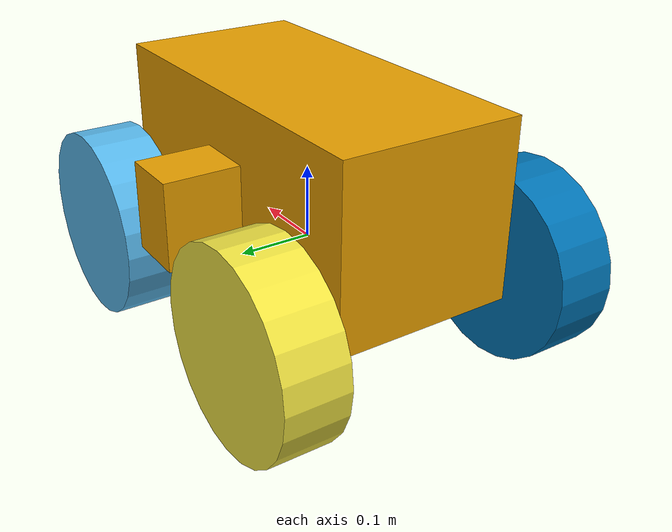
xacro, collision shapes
<?xml version="1.0" encoding="utf-8"?>
<robot name='robotika_freyja_sensor_config_1' xmlns:xacro='http://ros.org/wiki/xacro'>
  <xacro:arg name="name" default="robotika_freyja_sensor_config_1"/>
  <xacro:property name="robot_namespace" value="$(arg name)"/>

  <link name='${robot_namespace}/base_link'>
    <inertial>
      <origin xyz='0 0 0.0725' rpy='0 -0 0'/>
      <mass value='9.6'/>
      <inertia ixx='0.0512' ixy='0' ixz='0' iyy='0.07712' iyz='0' izz='0.11808'/>
    </inertial>
    <collision name='chassis_collision'>
      <origin xyz='0 0 0.105' rpy='0 -0 0'/>
      <geometry>
        <box size='0.5 0.24 0.235'/>
      </geometry>
    </collision>
    <collision name='left_mount_collision'>
      <origin xyz='0 0.17 0.085' rpy='0 -0 0'/>
      <geometry>
        <box size='0.08 0.1 0.115'/>
      </geometry>
    </collision>
    <collision name='right_mount_collision'>
      <origin xyz='0 -0.17 0.085' rpy='0 -0 0'/>
      <geometry>
        <box size='0.08 0.1 0.115'/>
      </geometry>
    </collision>
    <visual name='chassis_main_visual'>
      <origin xyz='0 0 0.0725' rpy='0 -0 0'/>
      <geometry>
        <box size='0.46 0.24 0.12'/>
      </geometry>
    </visual>
    <visual name='chassis_front_face_bottom'>
      <origin xyz='0.24 0 0.0175' rpy='0 -0 0'/>
      <geometry>
        <box size='0.02001 0.24 0.01'/>
      </geometry>
    </visual>
    <visual name='chassis_front_face_top'>
      <origin xyz='0.24 0 0.1275' rpy='0 -0 0'/>
      <geometry>
        <box size='0.02001 0.24 0.01'/>
      </geometry>
    </visual>
    <visual name='chassis_front_face_top_marker'>
      <origin xyz='0.245 0 0.1325' rpy='0 -0 0'/>
      <geometry>
        <box size='0.01 0.12 0.0001'/>
      </geometry>
    </visual>
    <visual name='chassis_front_face_left'>
      <origin xyz='0.24 0.115 0.0725' rpy='0 -0 0'/>
      <geometry>
        <box size='0.02001 0.01 0.12'/>
      </geometry>
    </visual>
    <visual name='chassis_front_face_right'>
      <origin xyz='0.24 -0.115 0.0725' rpy='0 -0 0'/>
      <geometry>
        <box size='0.02001 0.01 0.12'/>
      </geometry>
    </visual>
    <visual name='chassis_rear_face_bottom'>
      <origin xyz='-0.24 0 0.0175' rpy='0 -0 0'/>
      <geometry>
        <box size='0.02001 0.24 0.01'/>
      </geometry>
    </visual>
    <visual name='chassis_rear_face_top'>
      <origin xyz='-0.24 0 0.1275' rpy='0 -0 0'/>
      <geometry>
        <box size='0.02001 0.24 0.01'/>
      </geometry>
    </visual>
    <visual name='chassis_rear_face_top_marker'>
      <origin xyz='-0.245 0 0.1325' rpy='0 -0 0'/>
      <geometry>
        <box size='0.01 0.12 0.0001'/>
      </geometry>
    </visual>
    <visual name='chassis_rear_face_left'>
      <origin xyz='-0.24 0.115 0.0725' rpy='0 -0 0'/>
      <geometry>
        <box size='0.02001 0.01 0.12'/>
      </geometry>
    </visual>
    <visual name='chassis_rear_face_right'>
      <origin xyz='-0.24 -0.115 0.0725' rpy='0 -0 0'/>
      <geometry>
        <box size='0.02001 0.01 0.12'/>
      </geometry>
    </visual>
    <visual name='lidar_base_visual'>
      <origin xyz='0 0 0.135' rpy='0 -0 0'/>
      <geometry>
        <box size='0.3001 0.21 0.005'/>
      </geometry>
    </visual>
    <visual name='cable_cover_left_visual'>
      <origin xyz='0 0.095 0.1475' rpy='0 -0 0'/>
      <geometry>
        <box size='0.07 0.02 0.02001'/>
      </geometry>
    </visual>
    <visual name='cable_cover_right_visual'>
      <origin xyz='0 -0.095 0.1475' rpy='0 -0 0'/>
      <geometry>
        <box size='0.07 0.02 0.02001'/>
      </geometry>
    </visual>
    <visual name='cable_cover_top_visual'>
      <origin xyz='0 0 0.16' rpy='0 -0 0'/>
      <geometry>
        <box size='0.07 0.21 0.005'/>
      </geometry>
    </visual>
    <visual name='left_mount_visual'>
      <origin xyz='0 0.17 0.0725' rpy='0 -0 0'/>
      <geometry>
        <box size='0.08 0.1 0.09'/>
      </geometry>
    </visual>
    <visual name='left_mount_top_marker_visual'>
      <origin xyz='0 0.215 0.1175' rpy='0 -0 0'/>
      <geometry>
        <box size='0.08 0.01 0.0001'/>
      </geometry>
    </visual>
    <visual name='right_mount_visual'>
      <origin xyz='0 -0.17 0.0725' rpy='0 -0 0'/>
      <geometry>
        <box size='0.08 0.1 0.09'/>
      </geometry>
    </visual>
    <visual name='right_mount_top_marker_visual'>
      <origin xyz='0 -0.215 0.1175' rpy='0 -0 0'/>
      <geometry>
        <box size='0.08 0.01 0.0001'/>
      </geometry>
    </visual>
    <visual name='emergency_stop_bottom_visual'>
      <origin xyz='0 -0.155 0.125' rpy='0 -0 0'/>
      <geometry>
        <cylinder radius='0.015' length='0.015'/>
      </geometry>
    </visual>
    <visual name='emergency_stop_top_visual'>
      <origin xyz='0 -0.155 0.135' rpy='0 -0 0'/>
      <geometry>
        <cylinder radius='0.02' length='0.005'/>
      </geometry>
    </visual>
    <visual name='power_switch_bottom_visual'>
      <origin xyz='0 0.155 0.1225' rpy='0 -0 0'/>
      <geometry>
        <cylinder radius='0.015' length='0.005'/>
      </geometry>
    </visual>
    <visual name='power_switch_middle_visual'>
      <origin xyz='0 0.155 0.1275' rpy='0 -0 0'/>
      <geometry>
        <cylinder radius='0.015' length='0.005'/>
      </geometry>
    </visual>
    <visual name='power_switch_top_visual'>
      <origin xyz='0 0.155 0.1375' rpy='0 -0 0.35'/>
      <geometry>
        <box size='0.025 0.005 0.01'/>
      </geometry>
    </visual>
    <visual name='wheel_mount_front_left_axis_visual'>
      <origin xyz='0.19 0.11 0' rpy='1.5708 -0 0'/>
      <geometry>
        <cylinder radius='0.008' length='0.05'/>
      </geometry>
    </visual>
    <visual name='wheel_mount_front_left_visual'>
      <origin xyz='0.19 0.08 0' rpy='0 -0 0'/>
      <geometry>
        <box size='0.05 0.07 0.025'/>
      </geometry>
    </visual>
    <visual name='wheel_mount_front_right_axis_visual'>
      <origin xyz='0.19 -0.11 0' rpy='1.5708 -0 0'/>
      <geometry>
        <cylinder radius='0.008' length='0.05'/>
      </geometry>
    </visual>
    <visual name='wheel_mount_front_right_visual'>
      <origin xyz='0.19 -0.08 0' rpy='0 -0 0'/>
      <geometry>
        <box size='0.05 0.07 0.025'/>
      </geometry>
    </visual>
    <visual name='wheel_mount_rear_left_axis_visual'>
      <origin xyz='-0.19 0.11 0' rpy='1.5708 -0 0'/>
      <geometry>
        <cylinder radius='0.008' length='0.05'/>
      </geometry>
    </visual>
    <visual name='wheel_mount_rear_left_visual'>
      <origin xyz='-0.19 0.08 0' rpy='0 -0 0'/>
      <geometry>
        <box size='0.05 0.07 0.025'/>
      </geometry>
    </visual>
    <visual name='wheel_mount_rear_right_axis_visual'>
      <origin xyz='-0.19 -0.11 0' rpy='1.5708 -0 0'/>
      <geometry>
        <cylinder radius='0.008' length='0.05'/>
      </geometry>
    </visual>
    <visual name='wheel_mount_rear_right_visual'>
      <origin xyz='-0.19 -0.08 0' rpy='0 -0 0'/>
      <geometry>
        <box size='0.05 0.07 0.025'/>
      </geometry>
    </visual>
    <visual name='laser_front_bottom_visual'>
      <origin xyz='0.12 0 0.16' rpy='0 -0 0'/>
      <geometry>
        <box size='0.06 0.065 0.045'/>
      </geometry>
    </visual>
    <visual name='laser_front_top_visual'>
      <origin xyz='0.12 0 0.2025' rpy='0 -0 0'/>
      <geometry>
        <cylinder radius='0.02' length='0.04'/>
      </geometry>
    </visual>
    <visual name='laser_front_cable_green'>
      <origin xyz='0.045 0.01 0.1525' rpy='0 1.5708 0'/>
      <geometry>
        <cylinder radius='0.005' length='0.09'/>
      </geometry>
    </visual>
    <visual name='laser_front_cable_black'>
      <origin xyz='0.045 -0.01 0.1525' rpy='0 1.5708 0'/>
      <geometry>
        <cylinder radius='0.005' length='0.09'/>
      </geometry>
    </visual>
    <visual name='laser_rear_bottom_visual'>
      <origin xyz='-0.12 0 0.1625' rpy='0 -0 0'/>
      <geometry>
        <box size='0.06 0.065 0.045'/>
      </geometry>
    </visual>
    <visual name='laser_rear_top_visual'>
      <origin xyz='-0.12 0 0.2025' rpy='0 -0 0'/>
      <geometry>
        <cylinder radius='0.02' length='0.04'/>
      </geometry>
    </visual>
    <visual name='laser_rear_cable_green'>
      <origin xyz='-0.045 -0.01 0.1525' rpy='0 1.5708 0'/>
      <geometry>
        <cylinder radius='0.005' length='0.09'/>
      </geometry>
    </visual>
    <visual name='laser_rear_cable_black'>
      <origin xyz='-0.045 0.01 0.1525' rpy='0 1.5708 0'/>
      <geometry>
        <cylinder radius='0.005' length='0.09'/>
      </geometry>
    </visual>
    <visual name='rgbd_front_visual'>
      <origin xyz='0.235 0 0.1025' rpy='0 -0 0'/>
      <geometry>
        <box size='0.03 0.162 0.03'/>
      </geometry>
    </visual>
    <visual name='rgbd_rear_visual'>
      <origin xyz='-0.235 0 0.1025' rpy='0 -0 0'/>
      <geometry>
        <box size='0.03 0.162 0.03'/>
      </geometry>
    </visual>
    <visual name='camera_front_visual'>
      <origin xyz='0.2349 0 0.0725' rpy='0 1.5708 0'/>
      <geometry>
        <cylinder radius='0.011' length='0.03'/>
      </geometry>
    </visual>
    <visual name='camera_rear_visual'>
      <origin xyz='-0.2349 0 0.0725' rpy='0 -1.5708 0'/>
      <geometry>
        <cylinder radius='0.011' length='0.03'/>
      </geometry>
    </visual>
    <visual name='camera_left_visual'>
      <origin xyz='0 0.22 0.0725' rpy='-1.5708 0 0'/>
      <geometry>
        <cylinder radius='0.011' length='0.005'/>
      </geometry>
    </visual>
    <visual name='camera_right_visual'>
      <origin xyz='0 -0.22 0.0725' rpy='1.5708 -0 0'/>
      <geometry>
        <cylinder radius='0.011' length='0.005'/>
      </geometry>
    </visual>
    <visual name='light_front_visual'>
      <origin xyz='0.24 0 0.0425' rpy='0 1.5708 0'/>
      <geometry>
        <cylinder radius='0.004' length='0.02001'/>
      </geometry>
    </visual>
    <visual name='light_rear_visual'>
      <origin xyz='-0.24 0 0.0425' rpy='0 1.5708 0'/>
      <geometry>
        <cylinder radius='0.004' length='0.02001'/>
      </geometry>
    </visual>
    <visual name='light_left_visual'>
      <origin xyz='0 0.22 0.0425' rpy='1.5708 -0 0'/>
      <geometry>
        <cylinder radius='0.004' length='0.0005'/>
      </geometry>
    </visual>
    <visual name='light_right_visual'>
      <origin xyz='0 -0.22 0.0425' rpy='1.5708 -0 0'/>
      <geometry>
        <cylinder radius='0.004' length='0.0005'/>
      </geometry>
    </visual>
  </link>

  <sensor name='imu_sensor' update_rate='50'>
    <parent link='${robot_namespace}/base_link'/>
    <origin xyz='0 0 0' rpy='0 -0 0'/>
  </sensor>
  <sensor name='magnetometer' update_rate='50'>
    <parent link='${robot_namespace}/base_link'/>
    <origin xyz='0 0 0' rpy='0 -0 0'/>
  </sensor>
  <sensor name='air_pressure' update_rate='20'>
    <parent link='${robot_namespace}/base_link'/>
    <origin xyz='0 0 0' rpy='0 -0 0'/>
  </sensor>
  <sensor name='laser_front' update_rate='15'>
    <parent link='${robot_namespace}/base_link'/>
    <origin xyz='0.12 0 0.1925' rpy='0 -0 0'/>
  </sensor>
  <sensor name='laser_rear' update_rate='15'>
    <parent link='${robot_namespace}/base_link'/>
    <origin xyz='-0.12 0 0.1925' rpy='0 -0 3.14159'/>
  </sensor>
  <sensor name='rgbd_front' update_rate='30'>
    <parent link='${robot_namespace}/base_link'/>
    <origin xyz='0.250001 0 0.1025' rpy='0 -0 0'/>
    <camera>
      <image width='640' height='360' format='R8G8B8' hfov='1.48358' near='0.01' far='300' />
    </camera>
  </sensor>
  <sensor name='rgbd_rear' update_rate='30'>
    <parent link='${robot_namespace}/base_link'/>
    <origin xyz='-0.250001 0 0.1025' rpy='0 -0 3.14159'/>
    <camera>
      <image width='640' height='360' format='R8G8B8' hfov='1.48358' near='0.01' far='300' />
    </camera>
  </sensor>
  <sensor name='camera_front' update_rate='30'>
    <parent link='${robot_namespace}/base_link'/>
    <origin xyz='0.25 0 0.0725' rpy='0 -0 0'/>
    <camera>
      <image width='640' height='360' format='R8G8B8' hfov='3' near='0.01' far='300' />
    </camera>
  </sensor>
  <sensor name='camera_rear' update_rate='30'>
    <parent link='${robot_namespace}/base_link'/>
    <origin xyz='-0.25 0 0.0725' rpy='0 -0 3.14159'/>
    <camera>
      <image width='640' height='360' format='R8G8B8' hfov='3' near='0.01' far='300' />
    </camera>
  </sensor>
  <sensor name='camera_left' update_rate='30'>
    <parent link='${robot_namespace}/base_link'/>
    <origin xyz='0 0.225 0' rpy='0.0725 -0 0'/>
    <camera>
      <image width='640' height='360' format='R8G8B8' hfov='3' near='0.01' far='300' />
    </camera>
  </sensor>
  <sensor name='camera_right' update_rate='30'>
    <parent link='${robot_namespace}/base_link'/>
    <origin xyz='0 -0.225 0.0725' rpy='0 0 -1.5708'/>
    <camera>
      <image width='640' height='360' format='R8G8B8' hfov='3' near='0.01' far='300' />
    </camera>
  </sensor>
  <link name='${robot_namespace}/front_left_wheel'>
    <inertial>
      <origin xyz='0 0 0' rpy='0 -0 0'/>
      <mass value='5'/>
      <inertia ixx='0.0153' ixy='0' ixz='0' iyy='0.025' iyz='0' izz='0.0153'/>
    </inertial>
    <collision name='front_left_wheel_collision'>
      <origin xyz='0 0 0' rpy='-1.5708 0 0'/>
      <geometry>
        <cylinder radius='0.1275' length='0.082'/>
      </geometry>
    </collision>
    <visual name='front_left_wheel_tire_visual'>
      <origin xyz='0 0 0' rpy='1.5708 -0 0'/>
      <geometry>
        <mesh filename='package://robotika_freyja_sensor_config_1/meshes/wheel_left.dae' scale='1.30102 1.30102 2.05'/>
      </geometry>
    </visual>
    <visual name='front_left_wheel_hub_visual'>
      <origin xyz='0 -0.055 0' rpy='1.5708 -0 0'/>
      <geometry>
        <cylinder radius='0.04' length='0.025'/>
      </geometry>
    </visual>
  </link>
  <link name='${robot_namespace}/front_right_wheel'>
    <inertial>
      <origin xyz='0 0 0' rpy='0 -0 0'/>
      <mass value='5'/>
      <inertia ixx='0.0153' ixy='0' ixz='0' iyy='0.025' iyz='0' izz='0.0153'/>
    </inertial>
    <collision name='front_right_wheel_collision'>
      <origin xyz='0 0 0' rpy='1.5708 -0 0'/>
      <geometry>
        <cylinder radius='0.1275' length='0.082'/>
      </geometry>
    </collision>
    <visual name='front_right_wheel_tire_visual'>
      <origin xyz='0 0 0' rpy='1.5708 -0 0'/>
      <geometry>
        <mesh filename='package://robotika_freyja_sensor_config_1/meshes/wheel_right.dae' scale='1.30102 1.30102 2.05'/>
      </geometry>
    </visual>
    <visual name='front_right_wheel_hub_visual'>
      <origin xyz='0 0.055 0' rpy='1.5708 -0 0'/>
      <geometry>
        <cylinder radius='0.04' length='0.025'/>
      </geometry>
    </visual>
  </link>
  <link name='${robot_namespace}/rear_left_wheel'>
    <inertial>
      <origin xyz='0 0 0' rpy='0 -0 0'/>
      <mass value='5'/>
      <inertia ixx='0.0153' ixy='0' ixz='0' iyy='0.025' iyz='0' izz='0.0153'/>
    </inertial>
    <collision name='rear_left_wheel_collision'>
      <origin xyz='0 0 0' rpy='-1.5708 0 0'/>
      <geometry>
        <cylinder radius='0.1275' length='0.082'/>
      </geometry>
    </collision>
    <visual name='rear_left_wheel_tire_visual'>
      <origin xyz='0 0 0' rpy='1.5708 -0 0'/>
      <geometry>
        <mesh filename='package://robotika_freyja_sensor_config_1/meshes/wheel_left.dae' scale='1.30102 1.30102 2.05'/>
      </geometry>
    </visual>
    <visual name='rear_left_wheel_hub_visual'>
      <origin xyz='0 -0.055 0' rpy='1.5708 -0 0'/>
      <geometry>
        <cylinder radius='0.04' length='0.025'/>
      </geometry>
    </visual>
  </link>
  <link name='${robot_namespace}/rear_right_wheel'>
    <inertial>
      <origin xyz='0 0 0' rpy='0 -0 0'/>
      <mass value='5'/>
      <inertia ixx='0.0153' ixy='0' ixz='0' iyy='0.025' iyz='0' izz='0.0153'/>
    </inertial>
    <collision name='rear_right_wheel_collision'>
      <origin xyz='0 0 0' rpy='1.5708 -0 0'/>
      <geometry>
        <cylinder radius='0.1275' length='0.082'/>
      </geometry>
    </collision>
    <visual name='rear_right_wheel_tire_visual'>
      <origin xyz='0 0 0' rpy='1.5708 -0 0'/>
      <geometry>
        <mesh filename='package://robotika_freyja_sensor_config_1/meshes/wheel_right.dae' scale='1.30102 1.30102 2.05'/>
      </geometry>
    </visual>
    <visual name='rear_right_wheel_hub_visual'>
      <origin xyz='0 0.055 0' rpy='1.5708 -0 0'/>
      <geometry>
        <cylinder radius='0.04' length='0.025'/>
      </geometry>
    </visual>
  </link>
  <joint name='front_left_wheel_joint' type='revolute'>
    <origin xyz='0.19 0.19 0' rpy='0 -0 0'/>
    <parent link='${robot_namespace}/base_link'/>
    <child link='${robot_namespace}/front_left_wheel'/>
    <axis xyz='0 1 0'/>
    <limit lower='-1.79769e+308' upper='1.79769e+308' effort='10' velocity='19.61'/>
  </joint>
  <joint name='rear_left_wheel_joint' type='revolute'>
    <origin xyz='-0.19 0.19 0' rpy='0 -0 0'/>
    <parent link='${robot_namespace}/base_link'/>
    <child link='${robot_namespace}/rear_left_wheel'/>
    <axis xyz='0 1 0'/>
    <limit lower='-1.79769e+308' upper='1.79769e+308' effort='10' velocity='19.61'/>
  </joint>
  <joint name='rear_right_wheel_joint' type='revolute'>
    <origin xyz='-0.19 -0.19 0' rpy='0 -0 0'/>
    <parent link='${robot_namespace}/base_link'/>
    <child link='${robot_namespace}/rear_right_wheel'/>
    <axis xyz='0 1 0'/>
    <limit lower='-1.79769e+308' upper='1.79769e+308' effort='10' velocity='19.61'/>
  </joint>
  <joint name='front_right_wheel_joint' type='revolute'>
    <origin xyz='0.19 -0.19 0' rpy='0 -0 0'/>
    <parent link='${robot_namespace}/base_link'/>
    <child link='${robot_namespace}/front_right_wheel'/>
    <axis xyz='0 1 0'/>
    <limit lower='-1.79769e+308' upper='1.79769e+308' effort='10' velocity='19.61'/>
  </joint>
</robot>
